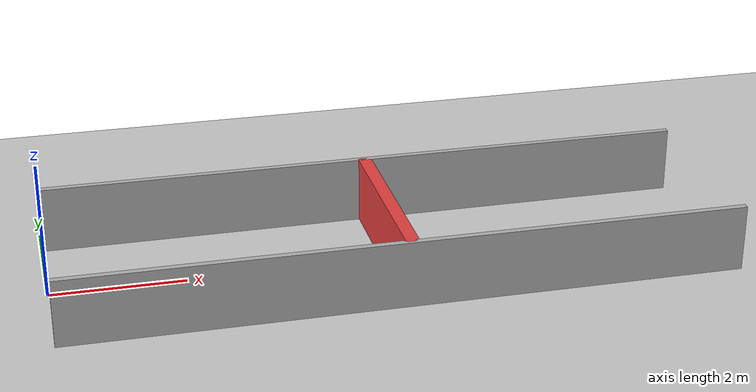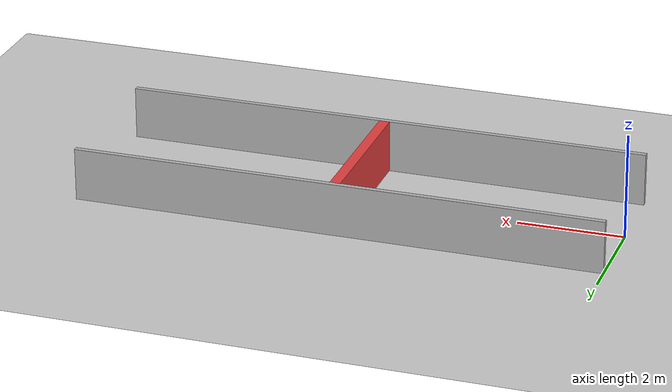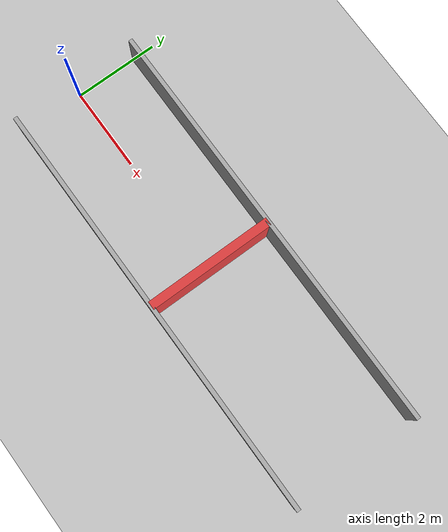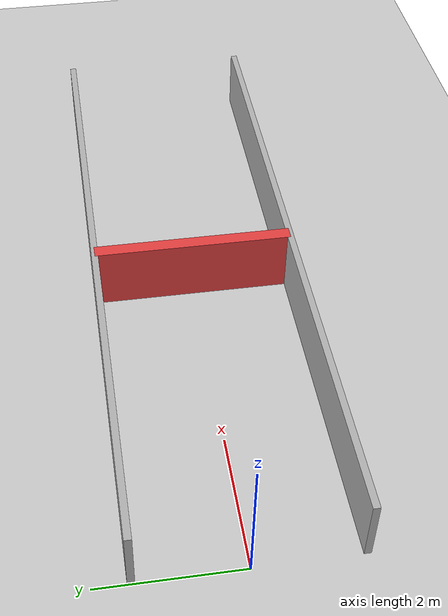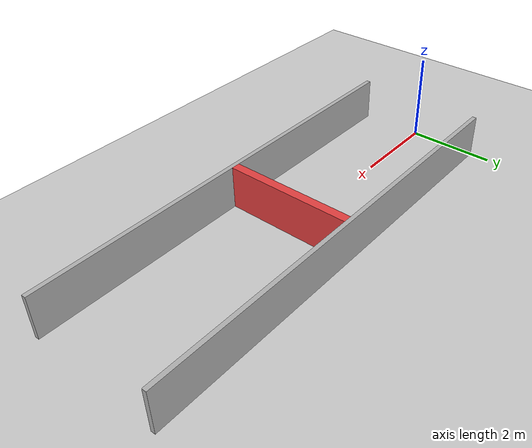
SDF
<?xml version="1.0" ?>
<sdf version="1.6">
  <world name="kirra_corridor">
    <include><uri>model://sun</uri></include>
    <include><uri>model://ground_plane</uri></include>

    <!-- Left wall (y = +1.5), 10 m long -->
    <model name="wall_left">
      <static>true</static>
      <pose>5 1.5 0.5 0 0 0</pose>
      <link name="link">
        <collision name="c"><geometry><box><size>10 0.1 1.0</size></box></geometry></collision>
        <visual name="v"><geometry><box><size>10 0.1 1.0</size></box></geometry>
          <material><ambient>0.6 0.6 0.6 1</ambient><diffuse>0.7 0.7 0.7 1</diffuse></material></visual>
      </link>
    </model>

    <!-- Right wall (y = -1.5), 10 m long -->
    <model name="wall_right">
      <static>true</static>
      <pose>5 -1.5 0.5 0 0 0</pose>
      <link name="link">
        <collision name="c"><geometry><box><size>10 0.1 1.0</size></box></geometry></collision>
        <visual name="v"><geometry><box><size>10 0.1 1.0</size></box></geometry>
          <material><ambient>0.6 0.6 0.6 1</ambient><diffuse>0.7 0.7 0.7 1</diffuse></material></visual>
      </link>
    </model>

    <!-- End wall dead ahead at x = 5 m: the obstacle Taj caps the approach speed against. -->
    <model name="wall_end">
      <static>true</static>
      <pose>5 0 0.5 0 0 0</pose>
      <link name="link">
        <collision name="c"><geometry><box><size>0.2 3.0 1.0</size></box></geometry></collision>
        <visual name="v"><geometry><box><size>0.2 3.0 1.0</size></box></geometry>
          <material><ambient>0.7 0.2 0.2 1</ambient><diffuse>0.9 0.25 0.25 1</diffuse></material></visual>
      </link>
    </model>

    <gui>
      <camera name="user_camera">
        <pose>-3 -4 4 0 0.5 0.7</pose>
      </camera>
    </gui>
  </world>
</sdf>
